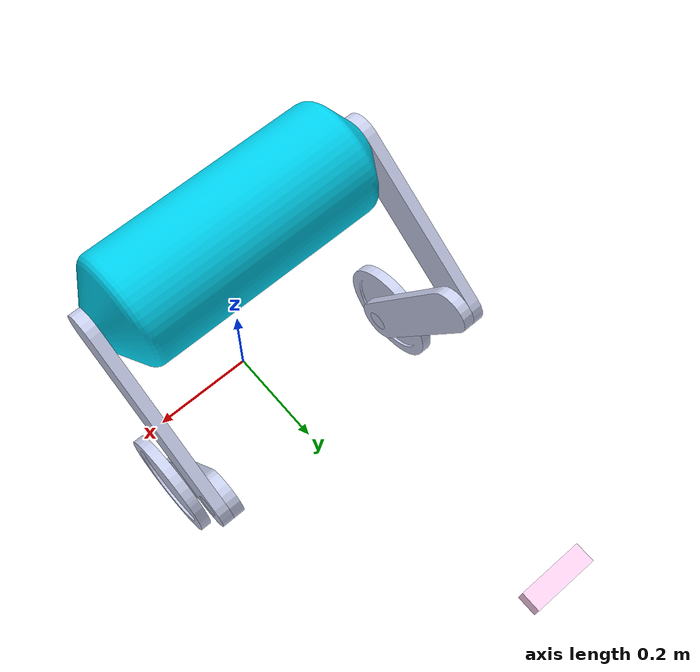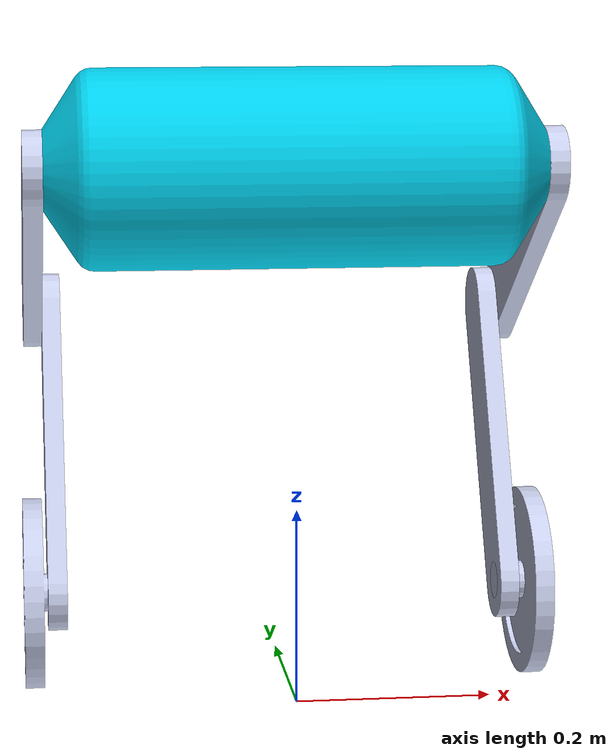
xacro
<?xml version="1.0"?>
<robot xmlns:xacro="http://www.ros.org/wiki/xacro" name="Assem1">

  <xacro:include filename="robot_core.xacro" />
  <xacro:include filename="gazebo_control.xacro" />
  <xacro:include filename="imu.xacro" />
  <xacro:include filename="camera.xacro" />

</robot>

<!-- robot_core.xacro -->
<robot xmlns:xacro="http://www.ros.org/wiki/xacro">

  <!--   LINKS               -->
  <link name="base_link"></link>
  <link name="Waist">
    <inertial>
      <origin xyz="-1.18888240640652E-16 -0.00507058467782265 -0.0187972227348701" rpy="0 0 0" />
      <mass value="6.4540071153471" />
      <inertia ixx="0.0700688932175611" ixy="-3.86937762023137E-19" ixz="-1.76854570708965E-20"
        iyy="0.292430846914939" iyz="-1.32037216353675E-18" izz="0.292430846914939" />
    </inertial>
    <visual>
      <origin xyz="0 0 0" rpy="0 0 0" />
      <geometry>
        <mesh filename="file://$(find bpwr)/description/meshes/Waist.STL" />
      </geometry>
      <material name="blue">
        <color rgba="0 0.819607843137255 0.933333333333333 1" />
      </material>
    </visual>
    <collision>
      <origin xyz="0 0 0" rpy="0 0 0" />
      <geometry>
        <mesh filename="file://$(find bpwr)/description/meshes/Waist.STL" />
      </geometry>
    </collision>
  </link>

  <link name="Hip_L">
    <inertial>
      <origin xyz="1.14491749414469E-16 -0.145390450825359 -0.0291728991057009" rpy="0 0 0" />
      <mass value="0.607730964914872" />
      <inertia ixx="0.0072795750548367" ixy="2.80537312130624E-18" ixz="-2.51690953028264E-19"
        iyy="0.000340614101699668" iyz="-7.30812115544072E-05" izz="0.00756039905840226" />
    </inertial>
    <visual>
      <origin xyz="0 0 0" rpy="0 0 0" />
      <geometry>
        <mesh filename="file://$(find bpwr)/description/meshes/Hip_L.STL" />
      </geometry>
      <material name="">
        <color rgba="0.792156862745098 0.819607843137255 0.933333333333333 1" />
      </material>
    </visual>
    <collision>
      <origin xyz="0 0 0" rpy="0 0 0" />
      <geometry>
        <mesh filename="file://$(find bpwr)/description/meshes/Hip_L.STL" />
      </geometry>
    </collision>
  </link>

  <link name="Shin_L">
    <inertial>
      <origin xyz="1.66533453693773E-16 -0.145390450825359 0.0108271008942993" rpy="0 0 0" />
      <mass value="0.607730964914872" />
      <inertia ixx="0.0072795750548367" ixy="1.12079399580689E-17" ixz="2.23616698075135E-19"
        iyy="0.000340614101699668" iyz="-7.30812115544049E-05" izz="0.00756039905840226" />
    </inertial>
    <visual>
      <origin xyz="0 0 0" rpy="0 0 0" />
      <geometry>
        <mesh filename="file://$(find bpwr)/description/meshes/Shin_L.STL" />
      </geometry>
      <material name="">
        <color rgba="0.792156862745098 0.819607843137255 0.933333333333333 1" />
      </material>
    </visual>
    <collision>
      <origin xyz="0 0 0" rpy="0 0 0" />
      <geometry>
        <mesh filename="file://$(find bpwr)/description/meshes/Shin_L.STL" />
      </geometry>
    </collision>
  </link>

  <link name="Wheel_L">
    <inertial>
      <origin xyz="5.55111512312578E-17 0 0.0333783783783784" rpy="0 0 0" />
      <mass value="0.46495571273129" />
      <inertia ixx="0.00127876689292999" ixy="5.42101086242752E-20" ixz="8.80537574413171E-19"
        iyy="0.00127876689292999" iyz="-2.79073771248327E-19" izz="0.00250573430050322" />
    </inertial>
    <visual>
      <origin xyz="0 0 0" rpy="0 0 0" />
      <geometry>
        <mesh filename="file://$(find bpwr)/description/meshes/Wheel_L.STL" />
      </geometry>
      <material name="">
        <color rgba="0.792156862745098 0.819607843137255 0.933333333333333 1" />
      </material>
    </visual>
    <collision>
      <origin xyz="0 0 0" rpy="0 0 0" />
      <geometry>
        <mesh filename="file://$(find bpwr)/description/meshes/Wheel_L.STL" />
      </geometry>
    </collision>
  </link>

  <link name="Hip_R">
    <inertial>
      <origin xyz="1.64798730217797E-17 -0.145390450825359 -0.0291728991057009" rpy="0 0 0" />
      <mass value="0.607730964914872" />
      <inertia ixx="0.0072795750548367" ixy="5.01443504774546E-19" ixz="5.42101086242752E-20"
        iyy="0.000340614101699668" iyz="-7.30812115544088E-05" izz="0.00756039905840226" />
    </inertial>
    <visual>
      <origin xyz="0 0 0" rpy="0 0 0" />
      <geometry>
        <mesh filename="file://$(find bpwr)/description/meshes/Hip_R.STL" />
      </geometry>
      <material name="">
        <color rgba="0.792156862745098 0.819607843137255 0.933333333333333 1" />
      </material>
    </visual>
    <collision>
      <origin xyz="0 0 0" rpy="0 0 0" />
      <geometry>
        <mesh filename="file://$(find bpwr)/description/meshes/Hip_R.STL" />
      </geometry>
    </collision>
  </link>

  <link name="Shin_R">
    <inertial>
      <origin xyz="2.77555756156289E-16 -0.145390450825358 0.0108271008942994" rpy="0 0 0" />
      <mass value="0.607730964914872" />
      <inertia ixx="0.0072795750548367" ixy="-1.31595038685428E-17" ixz="-1.8223425135342E-19"
        iyy="0.000340614101699669" iyz="-7.30812115544176E-05" izz="0.00756039905840226" />
    </inertial>
    <visual>
      <origin xyz="0 0 0" rpy="0 0 0" />
      <geometry>
        <mesh filename="file://$(find bpwr)/description/meshes/Shin_R.STL" />
      </geometry>
      <material name="">
        <color rgba="0.792156862745098 0.819607843137255 0.933333333333333 1" />
      </material>
    </visual>
    <collision>
      <origin xyz="0 0 0" rpy="0 0 0" />
      <geometry>
        <mesh filename="file://$(find bpwr)/description/meshes/Shin_R.STL" />
      </geometry>
    </collision>
  </link>

  <link name="Wheel_R">
    <inertial>
      <origin xyz="-1.0547118733939E-15 -6.10622663543836E-16 0.0333783783783783" rpy="0 0 0" />
      <mass value="0.46495571273129" />
      <inertia ixx="0.00127876689292999" ixy="5.42101086242752E-20" ixz="-2.317331240564E-19"
        iyy="0.00127876689292999" iyz="-1.34164060110775E-20" izz="0.00250573430050322" />
    </inertial>
    <visual>
      <origin xyz="0 0 0" rpy="0 0 0" />
      <geometry>
        <mesh filename="file://$(find bpwr)/description/meshes/Wheel_R.STL" />
      </geometry>
      <material name="">
        <color rgba="0.792156862745098 0.819607843137255 0.933333333333333 1" />
      </material>
    </visual>
    <collision>
      <origin xyz="0 0 0" rpy="0 0 0" />
      <geometry>
        <mesh filename="file://$(find bpwr)/description/meshes/Wheel_R.STL" />
      </geometry>
    </collision>
  </link>

  <!--   JOINTS              -->

  <joint name="L_Hip_Joint" type="revolute">
    <origin xyz="0.23 0.018797 -0.0050706" rpy="1.5708 0.97309 -1.5708" />
    <parent link="Waist" />
    <child link="Hip_L" />
    <axis xyz="0 0 1" />
    <limit lower="-1.57" upper="1.57" effort="50" velocity="10" />
  </joint>

  <joint name="L_Shin_Joint" type="revolute">
    <origin xyz="0 -0.317 0" rpy="-3.1416 0 -1.6808" />
    <parent link="Hip_L" />
    <child link="Shin_L" />
    <axis xyz="0 0 1" />
    <limit lower="-1.57" upper="1.57" effort="50" velocity="10" />
  </joint>

  <joint name="Wheel_L_Joint" type="continuous">
    <origin xyz="0 -0.317 0" rpy="0 0 1.2761" />
    <parent link="Shin_L" />
    <child link="Wheel_L" />
    <axis xyz="0 0 1" />
    <limit lower="-1.57" upper="1.57" effort="50" velocity="10" />
  </joint>

  <joint name="R_Hip_Joint" type="revolute">
    <origin xyz="-0.23 0.018797 -0.0050706" rpy="1.5708 -0.97309 1.5708" />
    <parent link="Waist" />
    <child link="Hip_R" />
    <axis xyz="0 0 1" />
    <limit lower="-1.57" upper="1.57" effort="50" velocity="10" />
  </joint>

  <joint name="R_Shin_Joint" type="revolute">
    <origin xyz="0 -0.317 0" rpy="3.1416 0 1.6808" />
    <parent link="Hip_R" />
    <child link="Shin_R" />
    <axis xyz="0 0 1" />
    <limit lower="-1.57" upper="1.57" effort="50" velocity="10" />
  </joint>

  <joint name="Wheel_R_Joint" type="continuous">
    <origin xyz="0 -0.317 0" rpy="0 0 1.6915" />
    <parent link="Shin_R" />
    <child link="Wheel_R" />
    <axis xyz="0 0 1" />
    <limit lower="0" upper="0" effort="0" velocity="0" />
  </joint>

  <joint name="base_to_waist" type="fixed">
    <parent link="base_link" />
    <child link="Waist" />
    <origin xyz="0 0 0.55" rpy="0 0 0" />
  </joint>

  <!--   GAZEBO REFERENCES   -->

  <gazebo reference="base_link">
    <material>Gazebo/Gray</material>
  </gazebo>

  <gazebo reference="L_Hip_Joint">
    <provideFeedback>true</provideFeedback>
    <damping>2.0</damping>
  </gazebo>

  <gazebo reference="R_Hip_Joint">
    <provideFeedback>true</provideFeedback>
    <damping>2.0</damping>
  </gazebo>

  <gazebo reference="L_Shin_Joint">
    <provideFeedback>true</provideFeedback>
    <damping>2.0</damping>
  </gazebo>

  <gazebo reference="R_Shin_Joint">
    <provideFeedback>true</provideFeedback>
    <damping>2.0</damping>
  </gazebo>

  <gazebo reference="Wheel_L">
    <provideFeedback>true</provideFeedback>
    <damping>0.1</damping>
    <mu1>1.5</mu1>
    <mu2>1.0</mu2>
    <material>Gazebo/Black</material>
  </gazebo>

  <gazebo reference="Wheel_R">
    <material>Gazebo/Black</material>
    <provideFeedback>true</provideFeedback>
    <damping>0.1</damping>
    <mu1>1.5</mu1>
    <mu2>1.0</mu2>
  </gazebo>

  <gazebo reference="Waist">
    <material>Gazebo/Red</material>
  </gazebo>
  <gazebo reference="Hip_L">
    <material>Gazebo/Blue</material>
  </gazebo>
  <gazebo reference="Hip_R">
    <material>Gazebo/Blue</material>
  </gazebo>
  <gazebo reference="Shin_L">
    <material>Gazebo/Green</material>
  </gazebo>

  <gazebo reference="Shin_R">
    <material>Gazebo/Green</material>
  </gazebo>

</robot>

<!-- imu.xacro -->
<robot xmlns:xacro="http://www.ros.org/wiki/xacro">

    <link name="imu_link">
        <inertial>
            <mass value="0.01" />
            <inertia ixx="0.0001" ixy="0" ixz="0" iyy="0.0001" iyz="0" izz="0.0001" />
        </inertial>
    </link>

    <joint name="waist_to_imu" type="fixed">
        <parent link="Waist" />
        <child link="imu_link" />
        <origin xyz="0 0 0" rpy="0 0 0" />
    </joint>

    <gazebo reference="imu_link">
        <sensor name="imu_sensor" type="imu">
            <always_on>true</always_on>
            <update_rate>100</update_rate>
            <topic>/imu</topic>
            <plugin name="imu_plugin" filename="libgazebo_ros_imu_sensor.so">
                <ros>
                    <namespace>/</namespace>
                    <remapping>~/out:=imu</remapping>
                </ros>
                <initial_orientation_as_reference>false</initial_orientation_as_reference>
            </plugin>
        </sensor>
    </gazebo>

</robot>

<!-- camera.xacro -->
<robot xmlns:xacro="http://www.ros.org/wiki/xacro">

    <joint name="camera" type="fixed">
        <parent link="Waist" />
        <child link="camera_link" />
        <origin xyz="0 0.7 0.0" rpy="0 0 0" />

    </joint>

    <link name="camera_link">
        <visual>
            <geometry>
                <box size="0.1 0.03 0.03 " />
            </geometry>
            <material name="">
                <color rgba="1 0.819607843137255 0.933333333333333 1" />
            </material>
        </visual>

    </link>

    <joint name="camera_optical_joint" type="fixed">
        <parent link="camera_link" />
        <child link="camera_link_optical" />
        <origin xyz="0 0 0" rpy="0 0 0" />
    </joint>

    <link name="camera_link_optical">

    </link>
    <gazebo reference="camera_link">
        <material>Gazebo/Green</material>
        <sensor name="camera" type="depth">
            <visualize>true</visualize>
            <update_rate>10</update_rate>
            <camera>
                <horizontal_focus>1.089</horizontal_focus>
                <image>
                    <format>R8G8B8</format>
                    <width>640</width>
                    <height>480</height>
                </image>
                <clip>
                    <near>0.05</near>
                    <far>8.0</far>
                </clip>
            </camera>
            <plugin name="camera_controller" filename="libgazebo_ros_camera.so">
                <frame_name>camera_link_optical</frame_name>

            </plugin>
        </sensor>
    </gazebo>

</robot>
